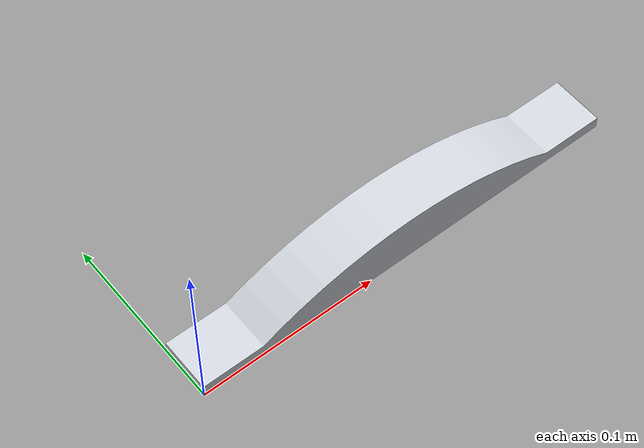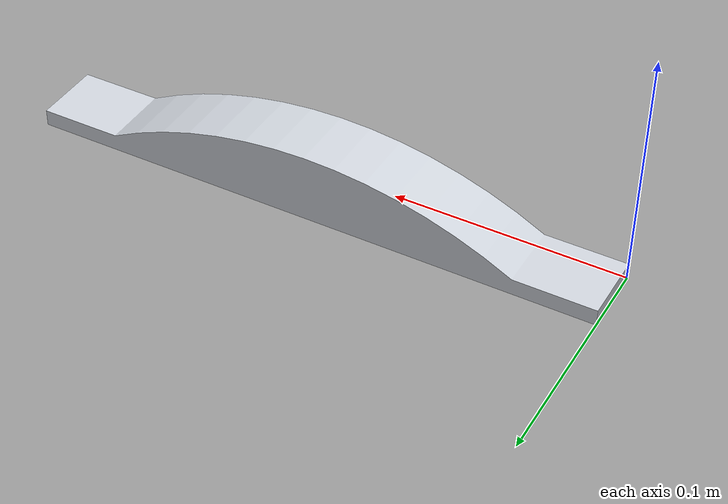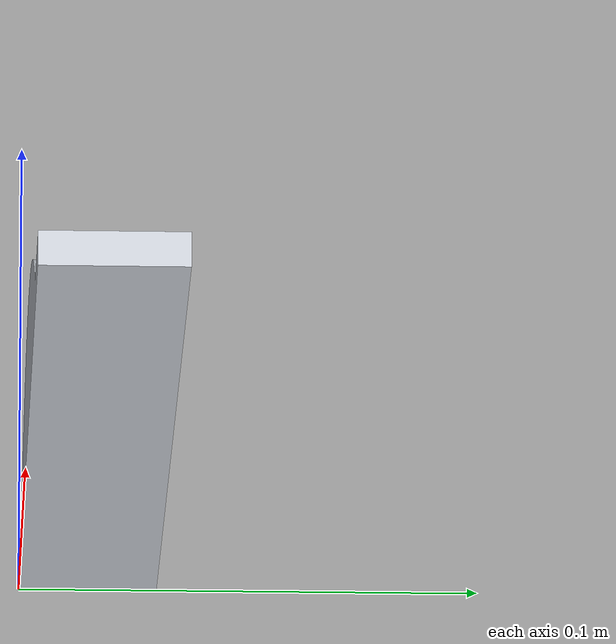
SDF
<?xml version="1.0"?>
<sdf version="1.9">
  <model name="slope_fixture">
    <!-- The real fixture is clamped. Static is its simulation equivalent. -->
    <static>true</static>
    <link name="fixture">
      <collision name="slope_collision">
        <geometry>
          <mesh>
            <uri>file:///opt/demo/fixtures/slope.STL</uri>
            <!-- The source STL is in millimetres. -->
            <scale>0.001 0.001 0.001</scale>
          </mesh>
        </geometry>
        <surface>
          <friction>
            <ode>
              <mu>0.35</mu>
              <mu2>0.35</mu2>
            </ode>
          </friction>
          <contact>
            <ode>
              <kp>500000</kp>
              <kd>100</kd>
              <max_vel>0.05</max_vel>
              <min_depth>0.0002</min_depth>
            </ode>
          </contact>
        </surface>
      </collision>
      <visual name="slope_visual">
        <geometry>
          <mesh>
            <uri>file:///opt/demo/fixtures/slope.STL</uri>
            <scale>0.001 0.001 0.001</scale>
          </mesh>
        </geometry>
        <material>
          <ambient>0.65 0.67 0.70 1</ambient>
          <diffuse>0.80 0.82 0.85 1</diffuse>
          <specular>0.45 0.45 0.45 1</specular>
        </material>
      </visual>
    </link>
  </model>
</sdf>
